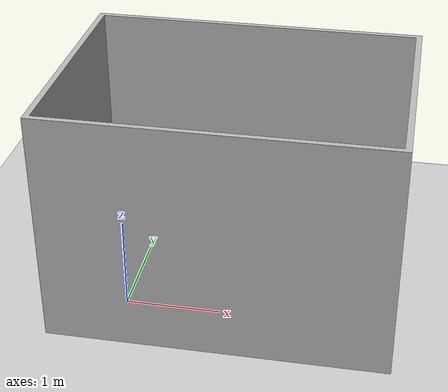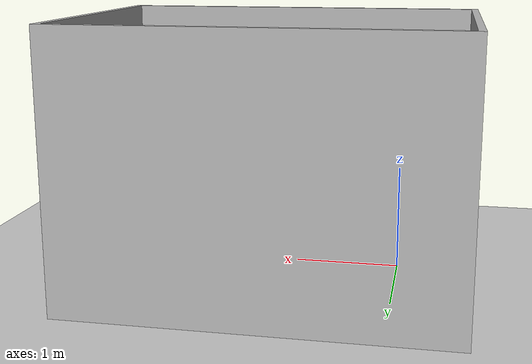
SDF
<sdf version="1.6">
 <world name="default">
  <light name="sun" type="directional">
   <pose>0 0 10 0 -0 0</pose>
   <diffuse>0.8 0.8 0.8 1</diffuse>
   <specular>0.1 0.1 0.1 1</specular>
   <attenuation>
    <range>1000</range>
    <constant>0.9</constant>
    <linear>0.01</linear>
    <quadratic>0.001</quadratic>
   </attenuation>
   <direction>-0.5 0.5 -1</direction>
  </light>
  <model name="ground_plane">
   <static>1</static>
   <link name="link">
    <collision name="collision">
     <geometry><plane><normal>0 0 1</normal><size>100 100</size></plane></geometry>
     <surface><friction><ode><mu>100</mu><mu2>50</mu2></ode></friction></surface>
    </collision>
    <visual name="visual">
     <cast_shadows>0</cast_shadows>
     <geometry><plane><normal>0 0 1</normal><size>100 100</size></plane></geometry>
     <material>
      <script><uri>file://media/materials/scripts/gazebo.material</uri><name>Gazebo/Grey</name></script>
     </material>
    </visual>
   </link>
  </model>
  <gravity>0 0 -9.8</gravity>
  <magnetic_field>6e-06 2.3e-05 -4.2e-05</magnetic_field>
  <atmosphere type="adiabatic"/>
  <physics name="default_physics" default="0" type="ode">
   <max_step_size>0.001</max_step_size>
   <real_time_factor>1</real_time_factor>
   <real_time_update_rate>1000</real_time_update_rate>
  </physics>
  <scene><ambient>0.4 0.4 0.4 1</ambient><background>0.7 0.7 0.7 1</background><shadows>1</shadows></scene>
  <spherical_coordinates>
   <surface_model>EARTH_WGS84</surface_model>
   <latitude_deg>0</latitude_deg>
   <longitude_deg>0</longitude_deg>
   <elevation>0</elevation>
   <heading_deg>0</heading_deg>
  </spherical_coordinates>
  <model name="Part1">
   <link name="urdf_package">
    <inertial>
     <pose>1.6811 -0.55929 1.1918 0 -0 0</pose>
     <mass>5806.9</mass>
     <inertia>
      <ixx>6148.39</ixx>
      <ixy>-0.71938</ixy>
      <ixz>-2.11248</ixz>
      <iyy>11071.9</iyy>
      <iyz>32.929</iyz>
      <izz>9442.58</izz>
     </inertia>
    </inertial>
    <collision name="urdf_package_collision">
     <pose>0 0 0 1.5708 -0 0</pose>
     <geometry>
      <mesh>
       <scale>1 1 1</scale>
       <uri>../catkin_ws/src/project_x_ecobot/data/urdf_package/meshes/turtlebot_world_col.STL</uri>
      </mesh>
     </geometry>
    </collision>
    <visual name="urdf_package_visual">
     <pose>0 0 0 1.5708 -0 0</pose>
     <geometry>
      <mesh>
       <scale>1 1 1</scale>
       <uri>../catkin_ws/src/project_x_ecobot/data/urdf_package/meshes/turtlebot_world.STL</uri>
      </mesh>
     </geometry>
    </visual>
   </link>
   <pose>-0.599967 -0.600001 -3e-06 -1.5708 -0 1e-06</pose>
  </model>
 </world>
</sdf>
